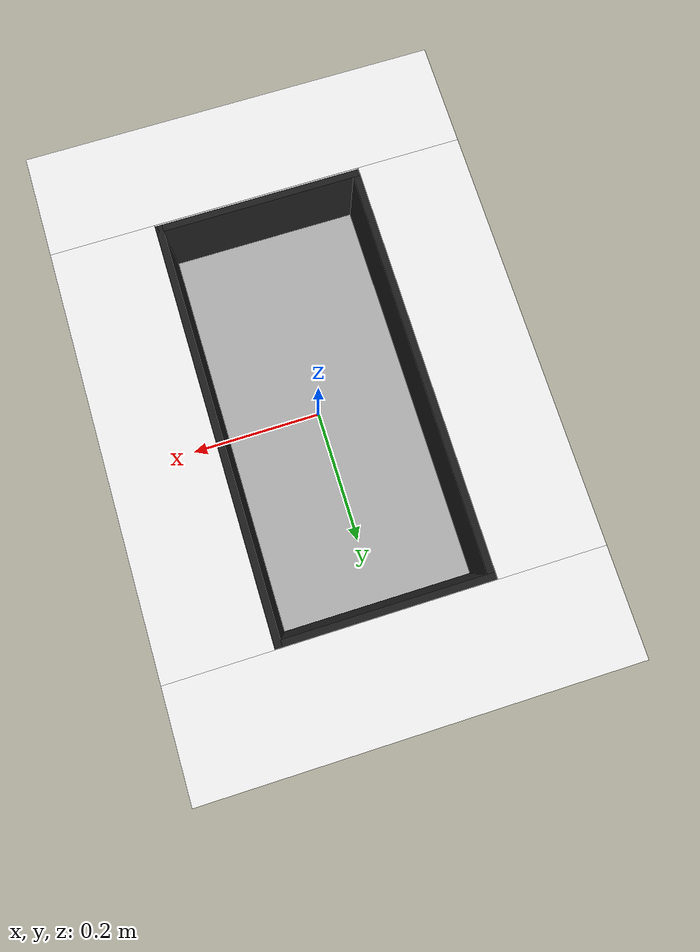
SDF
<?xml version="1.0"?>
<sdf version="1.11">  <model name="robosub_bin_spirits">
    <static>1</static>

    <include>
      <uri>model://robosub_bin</uri>
    </include>

    <link name="box_spirits">
      <visual name="box_spirits_vis">
        <pose>0 0 0.01 0 0 1.5707</pose>
        <geometry>
          <box>
            <size>0.6096 0.3048 0.02</size>
          </box>
        </geometry>
        <material>
          <script>
            <uri>file://materials/scripts/spirits.material</uri>
            <name>TexturedShape/spirits</name>
          </script>
        </material>
      </visual>
    </link>
  </model>
</sdf>

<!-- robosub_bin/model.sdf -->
<sdf version="1.11">  <model name="robosub_bin">
    <static>1</static>

    <link name="rim">
      <visual name="edge1">
        <pose>0.2286 0 0.1524 0 0 0</pose>
        <geometry>
          <box>
            <size>0.1524 0.6096 0.01</size>
          </box>
        </geometry>
        <material>
          <ambient>1 1 1 1</ambient>
          <diffuse>1 1 1 1</diffuse>
          <specular>0.1 0.1 0.1 1</specular>
        </material>
      </visual>

      <collision name="edge1_collide">
        <pose>0.2286 0 0.1524 0 0 0</pose>
        <geometry>
          <box>
            <size>0.1524 0.6096 0.01</size>
          </box>
        </geometry>
      </collision>

      <visual name="edge2">
        <pose>-0.2286 0 0.1524 0 0 0</pose>
        <geometry>
          <box>
            <size>0.1524 0.6096 0.01</size>
          </box>
        </geometry>
        <material>
          <ambient>1 1 1 1</ambient>
          <diffuse>1 1 1 1</diffuse>
          <specular>0.1 0.1 0.1 1</specular>
        </material>
      </visual>

      <collision name="edge2_collide">
        <pose>-0.2286 0 0.1524 0 0 0</pose>
        <geometry>
          <box>
            <size>0.1524 0.6096 0.01</size>
          </box>
        </geometry>
      </collision>

      <visual name="edge3">
        <pose>0 0.381 0.1524 0 0 0</pose>
        <geometry>
          <box>
            <size>0.6096 0.1524 0.01</size>
          </box>
        </geometry>
        <material>
          <ambient>1 1 1 1</ambient>
          <diffuse>1 1 1 1</diffuse>
          <specular>0.1 0.1 0.1 1</specular>
        </material>
      </visual>

      <collision name="edge3_collide">
        <pose>0 0.381 0.1524 0 0 0</pose>
        <geometry>
          <box>
            <size>0.6096 0.1524 0.01</size>
          </box>
        </geometry>
      </collision>

      <visual name="edge4">
        <pose>0 -0.381 0.1524 0 0 0</pose>
        <geometry>
          <box>
            <size>0.6096 0.1524 0.01</size>
          </box>
        </geometry>
        <material>
          <ambient>1 1 1 1</ambient>
          <diffuse>1 1 1 1</diffuse>
          <specular>0.1 0.1 0.1 1</specular>
        </material>
      </visual>

      <collision name="edge4_collide">
        <pose>0 -0.381 0.1524 0 0 0</pose>
        <geometry>
          <box>
            <size>0.6096 0.1524 0.01</size>
          </box>
        </geometry>
      </collision>
    </link>

    <link name="bin">
      <visual name="bottom">
        <pose>0 0 0 0 0 0</pose>
        <geometry>
          <box>
            <size>0.3048 0.6096 0.02</size>
          </box>
        </geometry>
        <material>
          <script>
            <uri>file://media/materials/scripts/gazebo.material</uri>
            <name>Gazebo/FlatBlack</name>
          </script>
        </material>
      </visual>

      <collision name="bottom_collide">
        <pose>0 0 0 0 0 0</pose>
        <geometry>
          <box>
            <size>0.3048 0.6096 0.02</size>
          </box>
        </geometry>
      </collision>

      <visual name="side1">
        <pose>0.1524 0 0.0762 0 0 0</pose>
        <geometry>
          <box>
            <size>0.02 0.6096 0.1524</size>
          </box>
        </geometry>
        <material>
          <script>
            <uri>file://media/materials/scripts/gazebo.material</uri>
            <name>Gazebo/FlatBlack</name>
          </script>
        </material>
      </visual>

      <collision name="side1_collide">
        <pose>0.1524 0 0.0762 0 0 0</pose>
        <geometry>
          <box>
            <size>0.02 0.6096 0.1524</size>
          </box>
        </geometry>
      </collision>

      <visual name="side2">
        <pose>-0.1524 0 0.0762 0 0 0</pose>
        <geometry>
          <box>
            <size>0.02 0.6096 0.1524</size>
          </box>
        </geometry>
        <material>
          <script>
            <uri>file://media/materials/scripts/gazebo.material</uri>
            <name>Gazebo/FlatBlack</name>
          </script>
        </material>
      </visual>

      <collision name="side2_collide">
        <pose>-0.1524 0 0.0762 0 0 0</pose>
        <geometry>
          <box>
            <size>0.02 0.6096 0.1524</size>
          </box>
        </geometry>
      </collision>

      <visual name="side3">
        <pose>0 0.3048 0.0762 0 0 0</pose>
        <geometry>
          <box>
            <size>0.3048 0.02 0.1524</size>
          </box>
        </geometry>
        <material>
          <script>
            <uri>file://media/materials/scripts/gazebo.material</uri>
            <name>Gazebo/FlatBlack</name>
          </script>
        </material>
      </visual>

      <collision name="side3_collide">
        <pose>0 0.3048 0.0762 0 0 0</pose>
        <geometry>
          <box>
            <size>0.3048 0.02 0.1524</size>
          </box>
        </geometry>
      </collision>

      <visual name="side4">
        <pose>0 -0.3048 0.0762 0 0 0</pose>
        <geometry>
          <box>
            <size>0.3048 0.02 0.1524</size>
          </box>
        </geometry>
        <material>
          <script>
            <uri>file://media/materials/scripts/gazebo.material</uri>
            <name>Gazebo/FlatBlack</name>
          </script>
        </material>
      </visual>

      <collision name="side4_collide">
        <pose>0 -0.3048 0.0762 0 0 0</pose>
        <geometry>
          <box>
            <size>0.3048 0.02 0.1524</size>
          </box>
        </geometry>
      </collision>
    </link>
  </model>
</sdf>
